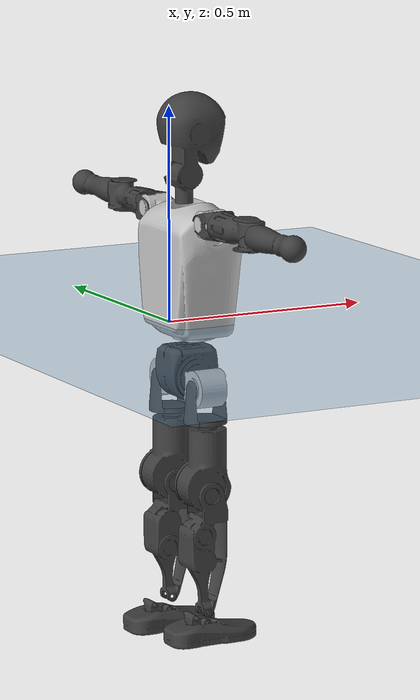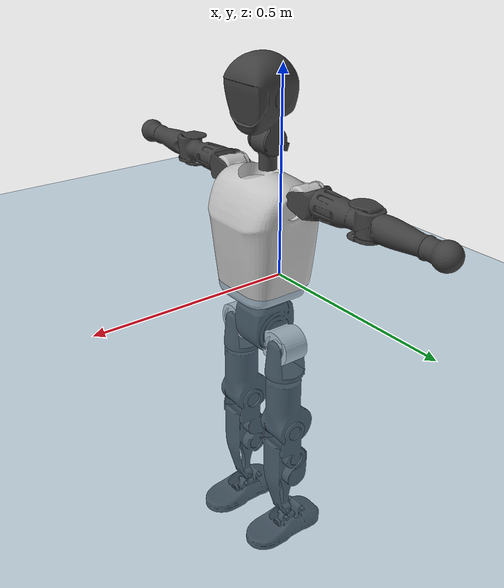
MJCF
<mujoco model="T1">
  <compiler angle="radian" assetdir="assets" balanceinertia="true" inertiafromgeom="false"/>

  <option timestep="0.005" density="1.2" viscosity="2e-05"/>

  <size nkey="1"/>

  <visual>
    <quality shadowsize="8192"/>
    <map shadowclip="0.5"/>
  </visual>

  <default>
    <default class="/">
      <joint armature="0.01" damping="0.01" frictionloss="0.1"/>
      <geom contype="0" conaffinity="0" group="1" solref="-1000 -80"/>
      <site size="0.01 0.005 0.005" group="5"/>
      <general forcelimited="true" biastype="affine" gainprm="25" biasprm="0 -25 -0.6"/>
      <default class="t1">
        <geom rgba="0.25 0.25 0.25 1"/>
        <default class="visual">
          <geom type="mesh" group="2"/>
        </default>
        <default class="collision">
          <geom group="3"/>
        </default>
        <default class="foot">
          <geom size="0.1115 0.05 0.015" type="box" condim="6" group="4" priority="1" solimp="0.015 1 0.015"/>
        </default>
        <default class="reward_collision_sphere">
          <geom group="5" rgba="1 0 0 1"/>
        </default>
      </default>
    </default>
  </default>

  <asset>
    <texture type="skybox" colorspace="auto" name="//unnamed_texture_0" builtin="gradient" rgb1="0.95 0.95 0.95" rgb2="0.95 0.95 0.95" width="100" height="600"/>
    <texture type="2d" colorspace="auto" name="texplane" builtin="checker" rgb1="0.345 0.575 0.748" rgb2="0.345 0.575 0.748" markrgb="1 1 1" width="512" height="512"/>
    <material name="MatPlane" class="/" texture="texplane" texuniform="true" texrepeat="2 2" specular="0.9"/>
    <mesh name="Trunk" class="/" file="Trunk.stl"/>
    <mesh name="H1" class="/" file="H1.stl"/>
    <mesh name="H2" class="/" file="H2.stl"/>
    <mesh name="AL1" class="/" file="AL1.stl"/>
    <mesh name="AL2" class="/" file="AL2.stl"/>
    <mesh name="AL3" class="/" file="AL3.stl"/>
    <mesh name="left_hand_link" class="/" file="left_hand_link.stl"/>
    <mesh name="AR1" class="/" file="AR1.stl"/>
    <mesh name="AR2" class="/" file="AR2.stl"/>
    <mesh name="AR3" class="/" file="AR3.stl"/>
    <mesh name="right_hand_link" class="/" file="right_hand_link.stl"/>
    <mesh name="Waist" class="/" file="Waist.stl"/>
    <mesh name="Hip_Pitch_Left" class="/" file="Hip_Pitch_Left.stl"/>
    <mesh name="Hip_Roll_Left" class="/" file="Hip_Roll_Left.stl"/>
    <mesh name="Hip_Yaw_Left" class="/" file="Hip_Yaw_Left.stl"/>
    <mesh name="Shank_Left" class="/" file="Shank_Left.stl"/>
    <mesh name="Ankle_Cross_Left" class="/" file="Ankle_Cross_Left.stl"/>
    <mesh name="left_foot_link" class="/" file="left_foot_link.stl"/>
    <mesh name="Hip_Pitch_Right" class="/" file="Hip_Pitch_Right.stl"/>
    <mesh name="Hip_Roll_Right" class="/" file="Hip_Roll_Right.stl"/>
    <mesh name="Hip_Yaw_Right" class="/" file="Hip_Yaw_Right.stl"/>
    <mesh name="Shank_Right" class="/" file="Shank_Right.stl"/>
    <mesh name="Ankle_Cross_Right" class="/" file="Ankle_Cross_Right.stl"/>
    <mesh name="right_foot_link" class="/" file="right_foot_link.stl"/>
  </asset>

  <worldbody>
    <geom name="floor" class="/" size="100 100 0.125" type="plane" group="0" material="MatPlane"/>
    <light name="toplight_shadow" class="/" pos="0 0 5" dir="0.0990148 0.0990148 -0.990148" type="directional" ambient="0.04 0.04 0.04" diffuse="0.55 0.55 0.55" specular="0.12 0.12 0.12"/>
    <light name="toplight_fill" class="/" pos="0 0 5" dir="0.0990148 0.0990148 -0.990148" type="directional" castshadow="false" ambient="0.04 0.04 0.04" diffuse="0.3 0.3 0.3" specular="0.08 0.08 0.08"/>
    <body name="trunk" childclass="t1" pos="0.000928438 -0.00277725 0.000880643" quat="1 -8.93845e-05 -2.33442e-05 -5.63589e-05">
      <inertial pos="0.035232 -0.00200832 0.11425" quat="0.999921 -0.000675833 -0.0124751 -0.00122525" mass="7.62474" diaginertia="0.0125981 0.0308048 0.0951061"/>
      <joint name="//unnamed_joint_0" type="free" armature="0" damping="0" frictionloss="0"/>
      <geom name="//unnamed_geom_1" class="visual" rgba="0.76 0.76 0.76 1" mesh="Trunk"/>
      <geom name="//unnamed_geom_2" class="collision" size="0.0657406 0.0876541 0.131481" pos="0.040572 0 0.133567" type="box"/>
      <geom name="//unnamed_geom_3" class="reward_collision_sphere" size="0.100802" pos="0.040572 0 0.111305"/>
      <geom name="//unnamed_geom_4" class="reward_collision_sphere" size="0.0131481" pos="0.040572 0.0714313 0"/>
      <geom name="//unnamed_geom_5" class="reward_collision_sphere" size="0.0131481" pos="0.040572 -0.0714313 0"/>
      <geom name="//unnamed_geom_6" class="reward_collision_sphere" size="0.0131481" pos="0.040572 0.0899194 0.20035"/>
      <geom name="//unnamed_geom_7" class="reward_collision_sphere" size="0.0131481" pos="0.040572 -0.0899194 0.20035"/>
      <site name="imu" pos="0.0110209 0.00815499 -0.0109675" size="0.00876541"/>
      <camera name="track" pos="0 -1.68074 0" quat="0.707107 0.707107 0 0" mode="trackcom"/>
      <camera name="ego_camera" pos="0.0824965 0 0.467483" quat="-0.5 -0.5 0.5 0.5"/>
      <body name="H1" pos="0.0380802 0.00240318 0.273369" quat="0.999999 0.00125139 6.46061e-05 -0.000308244">
        <inertial pos="-0.0039382 -0.00166784 0.0666649" quat="0.76401 -0.0140726 6.38271e-05 0.645051" mass="0.311183" diaginertia="3.56268e-05 9.81961e-05 0.000252437"/>
        <joint name="AAHead_yaw" pos="0 0 0" axis="-0.000349275 -0.000995959 0.999999" range="-1.61265 1.55585" armature="0.00765566" damping="0.0127199" frictionloss="0.0864404"/>
        <geom name="//unnamed_geom_8" class="visual" mesh="H1"/>
        <body name="H2" pos="0.0014456 -4.11361e-05 0.0669451" quat="1 8.22012e-05 -0.000255781 -0.000476647">
          <inertial pos="0.00562057 0.00139745 0.10946" quat="0.988607 0.10254 -0.0764228 -0.0793745" mass="0.429827" diaginertia="0.000293427 0.000835352 0.00298249"/>
          <joint name="Head_pitch" pos="0 0 0" axis="-0.0124177 -0.999906 0.00573599" range="-1.2052 0.353693" armature="0.00870713" damping="0.0065014" frictionloss="0.0820759"/>
          <geom name="//unnamed_geom_9" class="visual" mesh="H2"/>
          <geom name="//unnamed_geom_10" class="collision" size="0.0701233" pos="0.00676201 0 0.122436"/>
          <geom name="//unnamed_geom_11" class="reward_collision_sphere" size="0.0788887" pos="0.013524 0 0.111305"/>
        </body>
      </body>
      <body name="AL1" pos="0.0373706 0.0934014 0.244181" quat="1 2.22605e-05 0.000391104 0.000103605">
        <inertial pos="-0.000665002 0.037231 -0.00257425" quat="0.503797 0.496798 -0.503731 0.495616" mass="0.356267" diaginertia="0.000189939 0.00053445 0.000483151"/>
        <joint name="Left_Shoulder_Pitch" pos="0 0 0" axis="0.000223546 1 -0.000199461" stiffness="0.0113601" range="-3.33433 1.16648" armature="0.0082617" damping="0.00791798" frictionloss="0.0861764"/>
        <geom name="//unnamed_geom_12" class="visual" rgba="0.76 0.76 0.76 1" mesh="AL1"/>
        <body name="AL2" pos="0.00274007 0.0420084 -0.00219889" quat="1 -1.4931e-05 6.0273e-06 -2.20347e-05">
          <inertial pos="0.00515805 0.0291936 -0.00135803" quat="0.484387 0.513662 -0.49422 0.507215" mass="0.110164" diaginertia="5.76206e-05 0.000145787 0.000307615"/>
          <joint name="Left_Shoulder_Roll" pos="0 0 0" axis="-0.999909 -0.00129 -0.0134328" range="-1.55363 1.74922" armature="0.00904159" damping="0.0131574" frictionloss="0.0889713"/>
          <geom name="//unnamed_geom_13" class="visual" mesh="AL2"/>
          <body name="AL3" pos="0.000495277 0.050047 0.00284994" quat="1 -0.000377781 -7.60107e-05 -0.000272258">
            <inertial pos="-0.00315953 0.0719516 -0.000380536" quat="0.706647 0.707565 -0.000777278 -0.000282842" mass="0.67338" diaginertia="0.00185825 0.00532638 0.00106289"/>
            <joint name="Left_Elbow_Pitch" pos="0 0 0" axis="0.00156889 -0.999997 0.00200954" range="-2.32177 2.25077" armature="0.00873053" damping="0.00260946" frictionloss="0.0857921"/>
            <geom name="//unnamed_geom_14" class="visual" mesh="AL3"/>
            <geom name="//unnamed_geom_15" class="collision" size="0.0262962 0.0657406" pos="0 0.0420184 0" quat="0.707105 0.707108 0 0" type="cylinder"/>
            <geom name="//unnamed_geom_16" class="reward_collision_sphere" size="0.0315555"/>
            <body name="left_hand_link" pos="0.000982464 0.126202 0.00265367" quat="1 -0.00034364 -0.000298073 0.000109142">
              <inertial pos="0.000575584 0.0898407 -0.000599573" quat="0.700833 0.713289 0.00659718 0.00271572" mass="0.220861" diaginertia="0.00116371 0.0033606 0.000375977"/>
              <joint name="Left_Elbow_Yaw" pos="0 0 0" axis="0.00479378 -0.000248166 0.999988" range="-2.46667 -0.0348883" armature="0.00997659" damping="0.0241126" frictionloss="0.0872471"/>
              <geom name="//unnamed_geom_17" class="visual" mesh="left_hand_link"/>
              <geom name="//unnamed_geom_18" class="collision" size="0.0262962 0.0766973" pos="0 0.109248 0" quat="0.707105 0.707108 0 0" type="cylinder"/>
              <geom name="//unnamed_geom_19" class="reward_collision_sphere" size="0.0438271"/>
              <geom name="//unnamed_geom_20" class="reward_collision_sphere" size="0.0306789" pos="0 0.0924405 0"/>
              <geom name="//unnamed_geom_21" class="reward_collision_sphere" size="0.0306789" pos="0 0.180679 0"/>
            </body>
          </body>
        </body>
      </body>
      <body name="AR1" pos="0.0394763 -0.0844722 0.244699" quat="0.999999 -0.000233343 0.000962257 0.000323698">
        <inertial pos="-0.00192286 -0.0408993 0.00281283" quat="0.507375 0.496062 -0.503284 0.493152" mass="0.35846" diaginertia="0.000188613 0.000545806 0.00049356"/>
        <joint name="Right_Shoulder_Pitch" pos="0 0 0" axis="0.00773469 -0.999932 -0.00875892" range="-1.17556 3.30813" armature="0.00765843" damping="0.0191914" frictionloss="0.0754262"/>
        <geom name="//unnamed_geom_22" class="visual" rgba="0.76 0.76 0.76 1" mesh="AR1"/>
        <body name="AR2" pos="0.000653297 -0.0392047 -0.00016126" quat="1 -0.000155096 -0.000742594 -6.40981e-06">
          <inertial pos="-0.000296751 -0.0295695 -0.000863958" quat="0.503253 0.489356 -0.518487 0.488302" mass="0.104666" diaginertia="5.53007e-05 0.000145603 0.000294012"/>
          <joint name="Right_Shoulder_Roll" pos="0 0 0" axis="-1 0.00048994 0.000613314" range="-1.7939 1.5168" armature="0.0086419" damping="0.000911404" frictionloss="0.0864683"/>
          <geom name="//unnamed_geom_23" class="visual" mesh="AR2"/>
          <body name="AR3" pos="-0.00311191 -0.0518361 0.00114388" quat="1 -2.56724e-05 -0.000284167 0.000327988">
            <inertial pos="-0.00145651 -0.072687 0.00314678" quat="0.710765 0.703419 -0.00372845 0.00111069" mass="0.681454" diaginertia="0.00181722 0.00509087 0.00101039"/>
            <joint name="Right_Elbow_Pitch" pos="0 0 0" axis="0.00658786 0.999912 0.0115102" range="-2.32292 2.30086" armature="0.00827023" damping="0.0155397" frictionloss="0.0998665"/>
            <geom name="//unnamed_geom_24" class="visual" mesh="AR3"/>
            <geom name="//unnamed_geom_25" class="collision" size="0.0262962 0.0657406" pos="0 -0.0420184 0" quat="0.707105 0.707108 0 0" type="cylinder"/>
            <geom name="//unnamed_geom_26" class="reward_collision_sphere" size="0.0315555"/>
            <body name="right_hand_link" pos="-0.00379733 -0.126002 0.00046249" quat="1 -9.75496e-05 -0.000399664 0.000584988">
              <inertial pos="-0.000736417 -0.0893719 3.00995e-05" quat="0.706955 0.707259 0.000178238 -0.000121622" mass="0.229206" diaginertia="0.00118768 0.00334371 0.000372299"/>
              <joint name="Right_Elbow_Yaw" pos="0 0 0" axis="-0.00255395 0.0018619 0.999995" range="-0.0155928 2.42056" armature="0.00774079" damping="0.0153106" frictionloss="0.0896795"/>
              <geom name="//unnamed_geom_27" class="visual" mesh="right_hand_link"/>
              <geom name="//unnamed_geom_28" class="collision" size="0.0262962 0.0766973" pos="0 -0.109248 0" quat="0.707105 0.707108 0 0" type="cylinder"/>
              <geom name="//unnamed_geom_29" class="reward_collision_sphere" size="0.0438271"/>
              <geom name="//unnamed_geom_30" class="reward_collision_sphere" size="0.0306789" pos="0 -0.0924405 0"/>
              <geom name="//unnamed_geom_31" class="reward_collision_sphere" size="0.0306789" pos="0 -0.180679 0"/>
            </body>
          </body>
        </body>
      </body>
      <body name="Waist" pos="0.042421 -0.000405379 -0.125468" quat="1 1.75399e-05 -0.000787386 -0.000108775">
        <inertial pos="0.00432747 0.00124126 0.00777907" quat="0.982399 0.00438725 -0.186519 0.00918357" mass="1.65559" diaginertia="0.000714308 0.00207825 0.0076695"/>
        <joint name="Waist" pos="0 0 0" axis="-0.010254 -0.00781248 0.999917" range="-1.62575 1.51565" armature="0.00848656" damping="0.0113345" frictionloss="0.099201"/>
        <geom name="//unnamed_geom_32" class="visual" mesh="Waist"/>
        <body name="Hip_Pitch_Left" pos="0.00342246 0.0861148 -0.000974778" quat="1 -0.000608226 5.51502e-05 0.000674395">
          <inertial pos="-0.00177757 -0.00657936 -0.0208754" quat="0.976643 0.213506 0.0229913 0.00745145" mass="0.660286" diaginertia="0.000246117 0.000589229 0.00207355"/>
          <joint name="Left_Hip_Pitch" pos="0 0 0" axis="0.000725828 0.999864 0.016498" stiffness="0.0176769" range="-1.77996 1.59078" armature="0.00786752" damping="0.000881337" frictionloss="0.0836526"/>
          <geom name="//unnamed_geom_33" class="visual" rgba="0.76 0.76 0.76 1" mesh="Hip_Pitch_Left"/>
          <body name="Hip_Roll_Left" pos="0.000204155 -0.000658258 -0.0244876" quat="1 0.000214493 0.000506651 -0.000296224">
            <inertial pos="-0.000139328 0.00141101 -0.0610184" quat="0.706607 -0.00554807 -0.0051236 0.707566" mass="0.262978" diaginertia="0.000252948 0.000637083 0.000890721"/>
            <joint name="Left_Hip_Roll" pos="0 0 0" axis="-0.99987 -0.0044858 0.0154768" range="-1.62305 0.205316" armature="0.00904497" damping="0.0211007" frictionloss="0.0877877"/>
            <geom name="//unnamed_geom_34" class="visual" mesh="Hip_Roll_Left"/>
            <geom name="//unnamed_geom_35" class="reward_collision_sphere" size="0.0482098"/>
            <body name="Hip_Yaw_Left" pos="0.000641036 -0.000136922 -0.0937266" quat="1 5.51415e-05 0.000100705 4.85656e-05">
              <inertial pos="-0.00721928 -0.000542689 -0.0969164" quat="0.694622 -0.0347335 -0.0358537 0.717641" mass="1.47903" diaginertia="0.00388052 0.0110171 0.00474186"/>
              <joint name="Left_Hip_Yaw" pos="0 0 0" axis="0.00249511 -0.00243823 -0.999994" stiffness="0.00257477" range="-1.03066 0.97914" armature="0.0100401" damping="0.0184954" frictionloss="0.0878545"/>
              <geom name="//unnamed_geom_36" class="visual" mesh="Hip_Yaw_Left"/>
              <geom name="//unnamed_geom_37" class="collision" size="0.0438271 0.0701233" type="cylinder"/>
              <body name="Shank_Left" pos="-0.0092143 -0.00225212 -0.149493" quat="0.999999 0.000202043 0.0011931 -0.000237539">
                <inertial pos="-0.00539456 0.000931233 -0.139629" quat="0.997783 0.0068176 -0.0251206 0.0612544" mass="1.13754" diaginertia="0.00481905 0.0136568 0.00298562"/>
                <joint name="Left_Knee_Pitch" pos="0 0 0" axis="-0.000835917 1 -0.000242921" range="0.0535611 2.35682" armature="0.00843893" damping="0" frictionloss="0.0778257"/>
                <geom name="//unnamed_geom_38" class="visual" mesh="Shank_Left"/>
                <geom name="//unnamed_geom_39" class="collision" size="0.0438271 0.0657406" pos="0 0 -0.133567" type="cylinder"/>
                <geom name="//unnamed_geom_40" class="reward_collision_sphere" size="0.0569752"/>
                <body name="Ankle_Cross_Left" pos="-0.00404298 -0.00305836 -0.313227" quat="0.999999 -0.000275393 0.000669721 -0.000727416">
                  <inertial pos="-0.00261421 0.000245602 -0.00841241" quat="0.443071 0.551039 0.551085 0.443113" mass="0.0480346" diaginertia="4.24493e-06 1.07932e-05 1.91586e-05"/>
                  <joint name="Left_Ankle_Pitch" pos="0 0 0" axis="-0.00631528 0.999977 0.00239204" stiffness="0.012727" range="-0.919502 0.382325" armature="0.00841557" damping="0.0223487" frictionloss="0.0992795"/>
                  <geom name="//unnamed_geom_41" class="visual" mesh="Ankle_Cross_Left"/>
                  <body name="left_foot_link" pos="-0.00295861 0.00244008 -0.0136671" quat="1 0.000232703 -8.78149e-05 -6.19451e-05">
                    <inertial pos="-0.000383388 -0.000889066 -0.0127094" quat="0.0122398 0.622012 0.00569073 0.782891" mass="0.450719" diaginertia="0.000397511 0.00102905 0.00383931"/>
                    <joint name="Left_Ankle_Roll" pos="0 0 0" axis="-1 -0.000556905 -0.000120689" range="-0.453178 0.438274" armature="0.010082" damping="0.0110812" frictionloss="0.0861395"/>
                    <geom name="//unnamed_geom_42" class="visual" mesh="left_foot_link"/>
                    <geom name="left_foot" class="foot" size="0.104609 0.0396672 0.0130684" pos="0.00676201 0 -0.0166958"/>
                    <geom name="//unnamed_geom_44" class="reward_collision_sphere" size="0.0455801" pos="0.00676201 0 -0.0166958"/>
                    <geom name="//unnamed_geom_45" class="reward_collision_sphere" size="0.0262962" pos="0.0642391 -0.0193285 -0.0166958"/>
                    <geom name="//unnamed_geom_46" class="reward_collision_sphere" size="0.0262962" pos="-0.047334 -0.0193285 -0.0166958"/>
                    <site name="left_foot" class="foot" pos="0.00676201 0 -0.0166958" size="0.00876541"/>
                  </body>
                </body>
              </body>
            </body>
          </body>
        </body>
        <body name="Hip_Pitch_Right" pos="0.0030589 -0.0910435 0.000558766" quat="1 6.29537e-05 0.000322915 -7.52919e-05">
          <inertial pos="0.00279809 0.00447561 -0.0172991" quat="0.973501 -0.228189 0.0145196 -0.00395261" mass="0.690565" diaginertia="0.000251613 0.00064217 0.00213951"/>
          <joint name="Right_Hip_Pitch" pos="0 0 0" axis="-0.00010454 -0.999997 -0.00245296" range="-1.62177 1.79806" armature="0.00986855" damping="0.0101764" frictionloss="0.0755661"/>
          <geom name="//unnamed_geom_47" class="visual" rgba="0.76 0.76 0.76 1" mesh="Hip_Pitch_Right"/>
          <body name="Hip_Roll_Right" pos="-0.000165908 -0.000724019 -0.0230217" quat="1 -4.0158e-05 -0.000162929 -9.17733e-05">
            <inertial pos="0.00321464 0.00236716 -0.0575644" quat="0.70541 -0.00596184 -0.00230621 0.708771" mass="0.268466" diaginertia="0.000254886 0.00067143 0.000916698"/>
            <joint name="Right_Hip_Roll" pos="0 0 0" axis="-0.999841 0.0138402 0.0112519" range="-0.200885 1.58455" armature="0.00914324" damping="0.00800311" frictionloss="0.0884676"/>
            <geom name="//unnamed_geom_48" class="visual" mesh="Hip_Roll_Right"/>
            <geom name="//unnamed_geom_49" class="reward_collision_sphere" size="0.0482098"/>
            <body name="Hip_Yaw_Right" pos="0.000285376 -0.0033447 -0.089808" quat="1 0.000522488 -0.000613685 6.53676e-05">
              <inertial pos="-0.00521429 -0.00284767 -0.0971199" quat="0.716686 -0.0270156 -0.0315118 0.696159" mass="1.5159" diaginertia="0.00368082 0.0110013 0.00447082"/>
              <joint name="Right_Hip_Yaw" pos="0 0 0" axis="-0.000942388 -0.00593439 -0.999982" stiffness="0.00649054" range="-0.977193 1.0308" armature="0.00791654" damping="0.00470396" frictionloss="0.0859718"/>
              <geom name="//unnamed_geom_50" class="visual" mesh="Hip_Yaw_Right"/>
              <geom name="//unnamed_geom_51" class="collision" size="0.0438271 0.0701233" type="cylinder"/>
              <body name="Shank_Right" pos="-0.00932961 0.000916819 -0.151122" quat="0.999999 0.000850764 -0.000706272 0.000760795">
                <inertial pos="-0.00160258 -0.000926711 -0.135408" quat="0.99926 -0.000582546 -0.0234607 -0.0304719" mass="1.12397" diaginertia="0.00489996 0.0142107 0.0033471"/>
                <joint name="Right_Knee_Pitch" pos="0 0 0" axis="0.000185713 -1 -0.000155184" stiffness="0.00416742" range="-2.3411 0.0445819" armature="0.00889149" damping="0.0085027" frictionloss="0.0910366"/>
                <geom name="//unnamed_geom_52" class="visual" mesh="Shank_Right"/>
                <geom name="//unnamed_geom_53" class="collision" size="0.0438271 0.0657406" pos="0 0 -0.133567" type="cylinder"/>
                <geom name="//unnamed_geom_54" class="reward_collision_sphere" size="0.0569752"/>
                <body name="Ankle_Cross_Right" pos="0.00490131 0.000636033 -0.310939" quat="1 -0.000406988 -2.81864e-05 0.000232921">
                  <inertial pos="-0.00232195 0.00175193 -0.00761722" quat="0.443219 0.550907 0.551036 0.443189" mass="0.0492416" diaginertia="4.16879e-06 1.06723e-05 1.89048e-05"/>
                  <joint name="Right_Ankle_Pitch" pos="0 0 0" axis="0.00797787 -0.999948 -0.00639839" stiffness="0.0113936" range="-0.322821 0.89227" armature="0.00840899" damping="0.0125826" frictionloss="0.0847337"/>
                  <geom name="//unnamed_geom_55" class="visual" mesh="Ankle_Cross_Right"/>
                  <body name="right_foot_link" pos="0.00242216 -0.00343941 -0.0114898" quat="1 -5.14799e-05 -0.000554532 -3.79583e-05">
                    <inertial pos="0.000255381 0.00154445 -0.00960821" quat="-0.0125388 0.619871 -0.00596562 0.784581" mass="0.460744" diaginertia="0.000378881 0.00102289 0.0039191"/>
                    <joint name="Right_Ankle_Roll" pos="0 0 0" axis="-0.999964 -0.0049145 -0.00689538" range="-0.46018 0.385825" armature="0.00860442" damping="0.0128741" frictionloss="0.0897632"/>
                    <geom name="//unnamed_geom_56" class="visual" mesh="right_foot_link"/>
                    <geom name="right_foot" class="foot" size="0.095935 0.0488867 0.0130533" pos="0.00676201 0 -0.0166958"/>
                    <geom name="//unnamed_geom_58" class="reward_collision_sphere" size="0.0350616"/>
                    <geom name="//unnamed_geom_59" class="reward_collision_sphere" size="0.0262962" pos="0.00676201 0 -0.0166958"/>
                    <geom name="//unnamed_geom_60" class="reward_collision_sphere" size="0.0262962" pos="0.0642391 0.0193285 -0.0166958"/>
                    <geom name="//unnamed_geom_61" class="reward_collision_sphere" size="0.0262962" pos="-0.047334 0.0193285 -0.0166958"/>
                    <site name="right_foot" class="foot" pos="0.00676201 0 -0.0166958" size="0.00876541"/>
                  </body>
                </body>
              </body>
            </body>
          </body>
        </body>
      </body>
    </body>
  </worldbody>

  <contact>
    <pair class="/" geom1="floor" geom2="left_foot" name="//unnamed_contact_0"/>
    <pair class="/" geom1="floor" geom2="right_foot" name="//unnamed_contact_1"/>
  </contact>

  <actuator>
    <general name="AAHead_yaw" class="/" joint="AAHead_yaw" forcerange="-5.60599 5.60599" gainprm="22.2439" biasprm="0 -22.2439 -0.556661"/>
    <general name="Head_pitch" class="/" joint="Head_pitch" forcerange="-6.6817 6.6817" gainprm="22.2439" biasprm="0 -22.2439 -0.556661"/>
    <general name="Left_Shoulder_Pitch" class="/" joint="Left_Shoulder_Pitch" forcerange="-16.5749 16.5749" gainprm="22.2439" biasprm="0 -22.2439 -0.556661"/>
    <general name="Left_Shoulder_Roll" class="/" joint="Left_Shoulder_Roll" forcerange="-15.9046 15.9046" gainprm="22.2439" biasprm="0 -22.2439 -0.556661"/>
    <general name="Left_Elbow_Pitch" class="/" joint="Left_Elbow_Pitch" forcerange="-14.196 14.196" gainprm="22.2439" biasprm="0 -22.2439 -0.556661"/>
    <general name="Left_Elbow_Yaw" class="/" joint="Left_Elbow_Yaw" forcerange="-16.265 16.265" gainprm="22.2439" biasprm="0 -22.2439 -0.556661"/>
    <general name="Right_Shoulder_Pitch" class="/" joint="Right_Shoulder_Pitch" forcerange="-15.1695 15.1695" gainprm="22.2439" biasprm="0 -22.2439 -0.556661"/>
    <general name="Right_Shoulder_Roll" class="/" joint="Right_Shoulder_Roll" forcerange="-15.199 15.199" gainprm="22.2439" biasprm="0 -22.2439 -0.556661"/>
    <general name="Right_Elbow_Pitch" class="/" joint="Right_Elbow_Pitch" forcerange="-14.2157 14.2157" gainprm="22.2439" biasprm="0 -22.2439 -0.556661"/>
    <general name="Right_Elbow_Yaw" class="/" joint="Right_Elbow_Yaw" forcerange="-14.1559 14.1559" gainprm="22.2439" biasprm="0 -22.2439 -0.556661"/>
    <general name="Waist" class="/" joint="Waist" forcerange="-23.7515 23.7515" gainprm="22.2439" biasprm="0 -22.2439 -0.556661"/>
    <general name="Left_Hip_Pitch" class="/" joint="Left_Hip_Pitch" forcerange="-40.2207 40.2207" gainprm="22.2439" biasprm="0 -22.2439 -0.556661"/>
    <general name="Left_Hip_Roll" class="/" joint="Left_Hip_Roll" forcerange="-23.5891 23.5891" gainprm="22.2439" biasprm="0 -22.2439 -0.556661"/>
    <general name="Left_Hip_Yaw" class="/" joint="Left_Hip_Yaw" forcerange="-23.6256 23.6256" gainprm="22.2439" biasprm="0 -22.2439 -0.556661"/>
    <general name="Left_Knee_Pitch" class="/" joint="Left_Knee_Pitch" forcerange="-57.476 57.476" gainprm="22.2439" biasprm="0 -22.2439 -0.556661"/>
    <general name="Left_Ankle_Pitch" class="/" joint="Left_Ankle_Pitch" forcerange="-17.4048 17.4048" gainprm="22.2439" biasprm="0 -22.2439 -0.556661"/>
    <general name="Left_Ankle_Roll" class="/" joint="Left_Ankle_Roll" forcerange="-12.8124 12.8124" gainprm="22.2439" biasprm="0 -22.2439 -0.556661"/>
    <general name="Right_Hip_Pitch" class="/" joint="Right_Hip_Pitch" forcerange="-37.9555 37.9555" gainprm="22.2439" biasprm="0 -22.2439 -0.556661"/>
    <general name="Right_Hip_Roll" class="/" joint="Right_Hip_Roll" forcerange="-26.898 26.898" gainprm="22.2439" biasprm="0 -22.2439 -0.556661"/>
    <general name="Right_Hip_Yaw" class="/" joint="Right_Hip_Yaw" forcerange="-24.4749 24.4749" gainprm="22.2439" biasprm="0 -22.2439 -0.556661"/>
    <general name="Right_Knee_Pitch" class="/" joint="Right_Knee_Pitch" forcerange="-47.9317 47.9317" gainprm="22.2439" biasprm="0 -22.2439 -0.556661"/>
    <general name="Right_Ankle_Pitch" class="/" joint="Right_Ankle_Pitch" forcerange="-18.204 18.204" gainprm="22.2439" biasprm="0 -22.2439 -0.556661"/>
    <general name="Right_Ankle_Roll" class="/" joint="Right_Ankle_Roll" forcerange="-13.7857 13.7857" gainprm="22.2439" biasprm="0 -22.2439 -0.556661"/>
  </actuator>

  <sensor>
    <gyro site="imu" name="imu_angular_velocity"/>
    <velocimeter site="imu" name="imu_linear_velocity"/>
    <framelinvel objtype="site" objname="left_foot" name="left_foot_global_linear_velocity"/>
    <framelinvel objtype="site" objname="right_foot" name="right_foot_global_linear_velocity"/>
  </sensor>

  <keyframe>
    <key name="home" qpos="0 0 0.6385 1 0 0 0 0 0 0 1.4 0 -0.4 0 -1.4 0 0.4 0 -0.4 0 0 0.8 -0.4 0 0.4 0 0 -0.8 0.4 0"/>
  </keyframe>
</mujoco>
